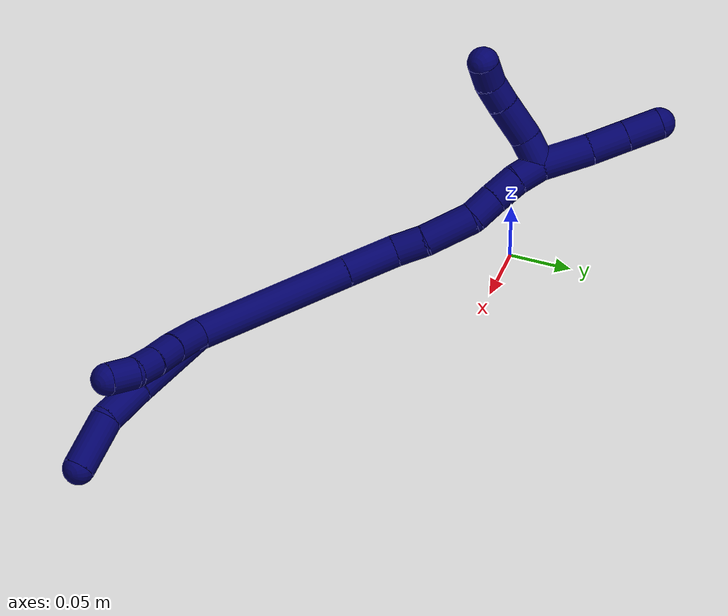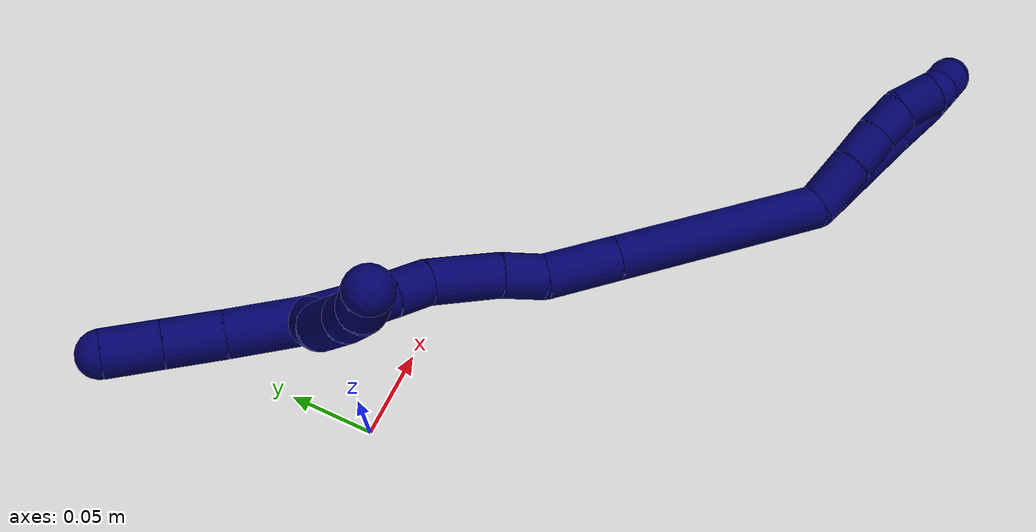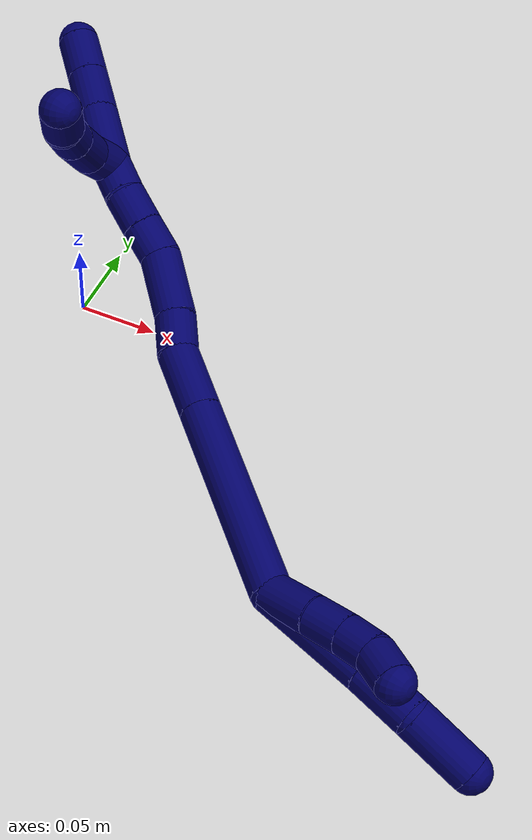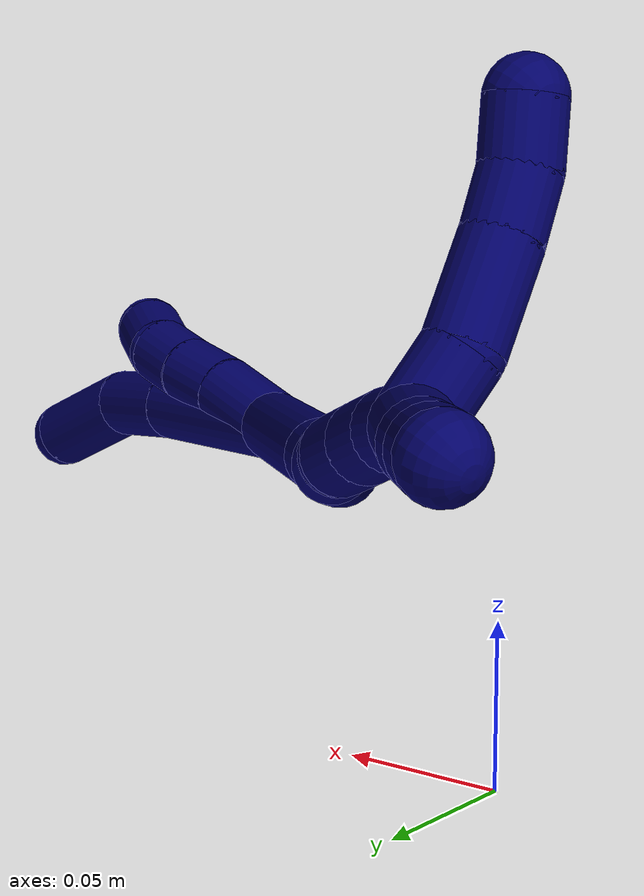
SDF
<sdf version="1.7">
 <world name="default">
  <model name="7">
   <static>0</static>
   <link name="7">
    <collision name="collision-cylinder-e_1_2_8">
     <pose>0.010374 -0.004859 0.033211 0.14527 0.299775 0.021976</pose>
     <geometry><cylinder><radius>0.0125</radius><length>0.070262</length></cylinder></geometry>
     <surface>
      <friction><ode><mu>1.16</mu><mu2>1.16</mu2><slip1>0</slip1><slip2>0</slip2></ode></friction>
      <contact><ode><kp>1e+06</kp><kd>1</kd><max_vel>0</max_vel><min_depth>0.001</min_depth></ode></contact>
     </surface>
    </collision>
    <visual name="visual-cylinder-e_1_2_8">
     <pose>0.010374 -0.004859 0.033211 0.14527 0.299775 0.021976</pose>
     <geometry><cylinder><radius>0.0125</radius><length>0.070262</length></cylinder></geometry>
     <material><ambient>0.003922 0 0.403922 1</ambient></material>
    </visual>
    <collision name="collision-cylinder-e_2_8_9">
     <pose>0.027205 -0.012675 0.083157 0.174887 0.363044 0.032179</pose>
     <geometry><cylinder><radius>0.0125</radius><length>0.03636</length></cylinder></geometry>
     <surface>
      <friction><ode><mu>1.16</mu><mu2>1.16</mu2><slip1>0</slip1><slip2>0</slip2></ode></friction>
      <contact><ode><kp>1e+06</kp><kd>1</kd><max_vel>0</max_vel><min_depth>0.001</min_depth></ode></contact>
     </surface>
    </collision>
    <visual name="visual-cylinder-e_2_8_9">
     <pose>0.027205 -0.012675 0.083157 0.174887 0.363044 0.032179</pose>
     <geometry><cylinder><radius>0.0125</radius><length>0.03636</length></cylinder></geometry>
     <material><ambient>0.003922 0 0.403922 1</ambient></material>
    </visual>
    <collision name="collision-cylinder-e_3_9_6">
     <pose>0.047741 -0.018058 0.116211 0.147617 0.706484 0.054513</pose>
     <geometry><cylinder><radius>0.0125</radius><length>0.043378</length></cylinder></geometry>
     <surface>
      <friction><ode><mu>1.16</mu><mu2>1.16</mu2><slip1>0</slip1><slip2>0</slip2></ode></friction>
      <contact><ode><kp>1e+06</kp><kd>1</kd><max_vel>0</max_vel><min_depth>0.001</min_depth></ode></contact>
     </surface>
    </collision>
    <visual name="visual-cylinder-e_3_9_6">
     <pose>0.047741 -0.018058 0.116211 0.147617 0.706484 0.054513</pose>
     <geometry><cylinder><radius>0.0125</radius><length>0.043378</length></cylinder></geometry>
     <material><ambient>0.003922 0 0.403922 1</ambient></material>
    </visual>
    <collision name="collision-cylinder-e_1_2_10">
     <pose>8.5e-05 -0.000187 0.016163 0.011542 0.005268 3e-05</pose>
     <geometry><cylinder><radius>0.0125</radius><length>0.032328</length></cylinder></geometry>
     <surface>
      <friction><ode><mu>1.16</mu><mu2>1.16</mu2><slip1>0</slip1><slip2>0</slip2></ode></friction>
      <contact><ode><kp>1e+06</kp><kd>1</kd><max_vel>0</max_vel><min_depth>0.001</min_depth></ode></contact>
     </surface>
    </collision>
    <visual name="visual-cylinder-e_1_2_10">
     <pose>8.5e-05 -0.000187 0.016163 0.011542 0.005268 3e-05</pose>
     <geometry><cylinder><radius>0.0125</radius><length>0.032328</length></cylinder></geometry>
     <material><ambient>0.003922 0 0.403922 1</ambient></material>
    </visual>
    <collision name="collision-cylinder-e_2_10_11">
     <pose>0.001218 -0.000449 0.04405 0.00645 0.089087 0.000287</pose>
     <geometry><cylinder><radius>0.0125</radius><length>0.023544</length></cylinder></geometry>
     <surface>
      <friction><ode><mu>1.16</mu><mu2>1.16</mu2><slip1>0</slip1><slip2>0</slip2></ode></friction>
      <contact><ode><kp>1e+06</kp><kd>1</kd><max_vel>0</max_vel><min_depth>0.001</min_depth></ode></contact>
     </surface>
    </collision>
    <visual name="visual-cylinder-e_2_10_11">
     <pose>0.001218 -0.000449 0.04405 0.00645 0.089087 0.000287</pose>
     <geometry><cylinder><radius>0.0125</radius><length>0.023544</length></cylinder></geometry>
     <material><ambient>0.003922 0 0.403922 1</ambient></material>
    </visual>
    <collision name="collision-cylinder-e_3_11_12">
     <pose>0.002757 -0.001367 0.066342 0.079531 0.046381 0.001846</pose>
     <geometry><cylinder><radius>0.0125</radius><length>0.021224</length></cylinder></geometry>
     <surface>
      <friction><ode><mu>1.16</mu><mu2>1.16</mu2><slip1>0</slip1><slip2>0</slip2></ode></friction>
      <contact><ode><kp>1e+06</kp><kd>1</kd><max_vel>0</max_vel><min_depth>0.001</min_depth></ode></contact>
     </surface>
    </collision>
    <visual name="visual-cylinder-e_3_11_12">
     <pose>0.002757 -0.001367 0.066342 0.079531 0.046381 0.001846</pose>
     <geometry><cylinder><radius>0.0125</radius><length>0.021224</length></cylinder></geometry>
     <material><ambient>0.003922 0 0.403922 1</ambient></material>
    </visual>
    <collision name="collision-cylinder-e_4_12_5">
     <pose>0.002635 -0.006627 0.087457 0.396681 -0.053622 -0.01078</pose>
     <geometry><cylinder><radius>0.0125</radius><length>0.022905</length></cylinder></geometry>
     <surface>
      <friction><ode><mu>1.16</mu><mu2>1.16</mu2><slip1>0</slip1><slip2>0</slip2></ode></friction>
      <contact><ode><kp>1e+06</kp><kd>1</kd><max_vel>0</max_vel><min_depth>0.001</min_depth></ode></contact>
     </surface>
    </collision>
    <visual name="visual-cylinder-e_4_12_5">
     <pose>0.002635 -0.006627 0.087457 0.396681 -0.053622 -0.01078</pose>
     <geometry><cylinder><radius>0.0125</radius><length>0.022905</length></cylinder></geometry>
     <material><ambient>0.003922 0 0.403922 1</ambient></material>
    </visual>
    <collision name="collision-cylinder-e_1_2_13">
     <pose>-0.011932 0.034992 -0.050223 -2.53306 -0.192524 0.596642</pose>
     <geometry><cylinder><radius>0.0125</radius><length>0.124727</length></cylinder></geometry>
     <surface>
      <friction><ode><mu>1.16</mu><mu2>1.16</mu2><slip1>0</slip1><slip2>0</slip2></ode></friction>
      <contact><ode><kp>1e+06</kp><kd>1</kd><max_vel>0</max_vel><min_depth>0.001</min_depth></ode></contact>
     </surface>
    </collision>
    <visual name="visual-cylinder-e_1_2_13">
     <pose>-0.011932 0.034992 -0.050223 -2.53306 -0.192524 0.596642</pose>
     <geometry><cylinder><radius>0.0125</radius><length>0.124727</length></cylinder></geometry>
     <material><ambient>0.003922 0 0.403922 1</ambient></material>
    </visual>
    <collision name="collision-cylinder-e_2_13_14">
     <pose>-0.027773 0.081831 -0.117421 -2.53233 -0.186613 0.578546</pose>
     <geometry><cylinder><radius>0.0125</radius><length>0.042131</length></cylinder></geometry>
     <surface>
      <friction><ode><mu>1.16</mu><mu2>1.16</mu2><slip1>0</slip1><slip2>0</slip2></ode></friction>
      <contact><ode><kp>1e+06</kp><kd>1</kd><max_vel>0</max_vel><min_depth>0.001</min_depth></ode></contact>
     </surface>
    </collision>
    <visual name="visual-cylinder-e_2_13_14">
     <pose>-0.027773 0.081831 -0.117421 -2.53233 -0.186613 0.578546</pose>
     <geometry><cylinder><radius>0.0125</radius><length>0.042131</length></cylinder></geometry>
     <material><ambient>0.003922 0 0.403922 1</ambient></material>
    </visual>
    <collision name="collision-cylinder-e_3_14_15">
     <pose>-0.034369 0.10303 -0.141879 -2.24552 -0.220696 0.45313</pose>
     <geometry><cylinder><radius>0.0125</radius><length>0.024553</length></cylinder></geometry>
     <surface>
      <friction><ode><mu>1.16</mu><mu2>1.16</mu2><slip1>0</slip1><slip2>0</slip2></ode></friction>
      <contact><ode><kp>1e+06</kp><kd>1</kd><max_vel>0</max_vel><min_depth>0.001</min_depth></ode></contact>
     </surface>
    </collision>
    <visual name="visual-cylinder-e_3_14_15">
     <pose>-0.034369 0.10303 -0.141879 -2.24552 -0.220696 0.45313</pose>
     <geometry><cylinder><radius>0.0125</radius><length>0.024553</length></cylinder></geometry>
     <material><ambient>0.003922 0 0.403922 1</ambient></material>
    </visual>
    <collision name="collision-cylinder-e_4_15_16">
     <pose>-0.043015 0.125782 -0.163575 -2.38574 -0.296127 0.718758</pose>
     <geometry><cylinder><radius>0.0125</radius><length>0.040841</length></cylinder></geometry>
     <surface>
      <friction><ode><mu>1.16</mu><mu2>1.16</mu2><slip1>0</slip1><slip2>0</slip2></ode></friction>
      <contact><ode><kp>1e+06</kp><kd>1</kd><max_vel>0</max_vel><min_depth>0.001</min_depth></ode></contact>
     </surface>
    </collision>
    <visual name="visual-cylinder-e_4_15_16">
     <pose>-0.043015 0.125782 -0.163575 -2.38574 -0.296127 0.718758</pose>
     <geometry><cylinder><radius>0.0125</radius><length>0.040841</length></cylinder></geometry>
     <material><ambient>0.003922 0 0.403922 1</ambient></material>
    </visual>
    <collision name="collision-cylinder-e_5_16_17">
     <pose>-0.054326 0.143822 -0.186346 -2.64447 -0.50251 1.58203</pose>
     <geometry><cylinder><radius>0.0125</radius><length>0.022221</length></cylinder></geometry>
     <surface>
      <friction><ode><mu>1.16</mu><mu2>1.16</mu2><slip1>0</slip1><slip2>0</slip2></ode></friction>
      <contact><ode><kp>1e+06</kp><kd>1</kd><max_vel>0</max_vel><min_depth>0.001</min_depth></ode></contact>
     </surface>
    </collision>
    <visual name="visual-cylinder-e_5_16_17">
     <pose>-0.054326 0.143822 -0.186346 -2.64447 -0.50251 1.58203</pose>
     <geometry><cylinder><radius>0.0125</radius><length>0.022221</length></cylinder></geometry>
     <material><ambient>0.003922 0 0.403922 1</ambient></material>
    </visual>
    <collision name="collision-cylinder-e_6_17_18">
     <pose>-0.065048 0.153601 -0.20393 -2.62426 -0.477365 1.48707</pose>
     <geometry><cylinder><radius>0.0125</radius><length>0.023381</length></cylinder></geometry>
     <surface>
      <friction><ode><mu>1.16</mu><mu2>1.16</mu2><slip1>0</slip1><slip2>0</slip2></ode></friction>
      <contact><ode><kp>1e+06</kp><kd>1</kd><max_vel>0</max_vel><min_depth>0.001</min_depth></ode></contact>
     </surface>
    </collision>
    <visual name="visual-cylinder-e_6_17_18">
     <pose>-0.065048 0.153601 -0.20393 -2.62426 -0.477365 1.48707</pose>
     <geometry><cylinder><radius>0.0125</radius><length>0.023381</length></cylinder></geometry>
     <material><ambient>0.003922 0 0.403922 1</ambient></material>
    </visual>
    <collision name="collision-cylinder-e_7_18_1">
     <pose>-0.074043 0.164485 -0.221697 -2.55993 -0.333411 1.02427</pose>
     <geometry><cylinder><radius>0.0125</radius><length>0.022146</length></cylinder></geometry>
     <surface>
      <friction><ode><mu>1.16</mu><mu2>1.16</mu2><slip1>0</slip1><slip2>0</slip2></ode></friction>
      <contact><ode><kp>1e+06</kp><kd>1</kd><max_vel>0</max_vel><min_depth>0.001</min_depth></ode></contact>
     </surface>
    </collision>
    <visual name="visual-cylinder-e_7_18_1">
     <pose>-0.074043 0.164485 -0.221697 -2.55993 -0.333411 1.02427</pose>
     <geometry><cylinder><radius>0.0125</radius><length>0.022146</length></cylinder></geometry>
     <material><ambient>0.003922 0 0.403922 1</ambient></material>
    </visual>
    <collision name="collision-cylinder-e_1_1_19">
     <pose>-0.08019 0.183201 -0.24607 -2.44907 -0.123622 0.339765</pose>
     <geometry><cylinder><radius>0.0125</radius><length>0.040931</length></cylinder></geometry>
     <surface>
      <friction><ode><mu>1.16</mu><mu2>1.16</mu2><slip1>0</slip1><slip2>0</slip2></ode></friction>
      <contact><ode><kp>1e+06</kp><kd>1</kd><max_vel>0</max_vel><min_depth>0.001</min_depth></ode></contact>
     </surface>
    </collision>
    <visual name="visual-cylinder-e_1_1_19">
     <pose>-0.08019 0.183201 -0.24607 -2.44907 -0.123622 0.339765</pose>
     <geometry><cylinder><radius>0.0125</radius><length>0.040931</length></cylinder></geometry>
     <material><ambient>0.003922 0 0.403922 1</ambient></material>
    </visual>
    <collision name="collision-cylinder-e_2_19_20">
     <pose>-0.085463 0.205818 -0.273008 -2.43508 -0.18289 0.487504</pose>
     <geometry><cylinder><radius>0.0125</radius><length>0.030234</length></cylinder></geometry>
     <surface>
      <friction><ode><mu>1.16</mu><mu2>1.16</mu2><slip1>0</slip1><slip2>0</slip2></ode></friction>
      <contact><ode><kp>1e+06</kp><kd>1</kd><max_vel>0</max_vel><min_depth>0.001</min_depth></ode></contact>
     </surface>
    </collision>
    <visual name="visual-cylinder-e_2_19_20">
     <pose>-0.085463 0.205818 -0.273008 -2.43508 -0.18289 0.487504</pose>
     <geometry><cylinder><radius>0.0125</radius><length>0.030234</length></cylinder></geometry>
     <material><ambient>0.003922 0 0.403922 1</ambient></material>
    </visual>
    <collision name="collision-cylinder-e_3_20_4">
     <pose>-0.090817 0.224641 -0.295128 -2.43815 -0.18163 0.486466</pose>
     <geometry><cylinder><radius>0.0125</radius><length>0.028835</length></cylinder></geometry>
     <surface>
      <friction><ode><mu>1.16</mu><mu2>1.16</mu2><slip1>0</slip1><slip2>0</slip2></ode></friction>
      <contact><ode><kp>1e+06</kp><kd>1</kd><max_vel>0</max_vel><min_depth>0.001</min_depth></ode></contact>
     </surface>
    </collision>
    <visual name="visual-cylinder-e_3_20_4">
     <pose>-0.090817 0.224641 -0.295128 -2.43815 -0.18163 0.486466</pose>
     <geometry><cylinder><radius>0.0125</radius><length>0.028835</length></cylinder></geometry>
     <material><ambient>0.003922 0 0.403922 1</ambient></material>
    </visual>
    <collision name="collision-cylinder-e_1_1_21">
     <pose>-0.089208 0.165864 -0.229069 1.26695 -1.19301 -0.925223</pose>
     <geometry><cylinder><radius>0.0125</radius><length>0.024834</length></cylinder></geometry>
     <surface>
      <friction><ode><mu>1.16</mu><mu2>1.16</mu2><slip1>0</slip1><slip2>0</slip2></ode></friction>
      <contact><ode><kp>1e+06</kp><kd>1</kd><max_vel>0</max_vel><min_depth>0.001</min_depth></ode></contact>
     </surface>
    </collision>
    <visual name="visual-cylinder-e_1_1_21">
     <pose>-0.089208 0.165864 -0.229069 1.26695 -1.19301 -0.925223</pose>
     <geometry><cylinder><radius>0.0125</radius><length>0.024834</length></cylinder></geometry>
     <material><ambient>0.003922 0 0.403922 1</ambient></material>
    </visual>
    <collision name="collision-cylinder-e_2_21_22">
     <pose>-0.115794 0.156944 -0.221347 0.621524 -1.09184 -0.385381</pose>
     <geometry><cylinder><radius>0.0125</radius><length>0.033905</length></cylinder></geometry>
     <surface>
      <friction><ode><mu>1.16</mu><mu2>1.16</mu2><slip1>0</slip1><slip2>0</slip2></ode></friction>
      <contact><ode><kp>1e+06</kp><kd>1</kd><max_vel>0</max_vel><min_depth>0.001</min_depth></ode></contact>
     </surface>
    </collision>
    <visual name="visual-cylinder-e_2_21_22">
     <pose>-0.115794 0.156944 -0.221347 0.621524 -1.09184 -0.385381</pose>
     <geometry><cylinder><radius>0.0125</radius><length>0.033905</length></cylinder></geometry>
     <material><ambient>0.003922 0 0.403922 1</ambient></material>
    </visual>
    <collision name="collision-cylinder-e_3_22_23">
     <pose>-0.140093 0.150392 -0.210968 0.461494 -1.11835 -0.291948</pose>
     <geometry><cylinder><radius>0.0125</radius><length>0.020579</length></cylinder></geometry>
     <surface>
      <friction><ode><mu>1.16</mu><mu2>1.16</mu2><slip1>0</slip1><slip2>0</slip2></ode></friction>
      <contact><ode><kp>1e+06</kp><kd>1</kd><max_vel>0</max_vel><min_depth>0.001</min_depth></ode></contact>
     </surface>
    </collision>
    <visual name="visual-cylinder-e_3_22_23">
     <pose>-0.140093 0.150392 -0.210968 0.461494 -1.11835 -0.291948</pose>
     <geometry><cylinder><radius>0.0125</radius><length>0.020579</length></cylinder></geometry>
     <material><ambient>0.003922 0 0.403922 1</ambient></material>
    </visual>
    <collision name="collision-cylinder-e_4_23_3">
     <pose>-0.158798 0.149182 -0.202818 -0.190099 -1.15279 0.123785</pose>
     <geometry><cylinder><radius>0.0125</radius><length>0.020682</length></cylinder></geometry>
     <surface>
      <friction><ode><mu>1.16</mu><mu2>1.16</mu2><slip1>0</slip1><slip2>0</slip2></ode></friction>
      <contact><ode><kp>1e+06</kp><kd>1</kd><max_vel>0</max_vel><min_depth>0.001</min_depth></ode></contact>
     </surface>
    </collision>
    <visual name="visual-cylinder-e_4_23_3">
     <pose>-0.158798 0.149182 -0.202818 -0.190099 -1.15279 0.123785</pose>
     <geometry><cylinder><radius>0.0125</radius><length>0.020682</length></cylinder></geometry>
     <material><ambient>0.003922 0 0.403922 1</ambient></material>
    </visual>
    <collision name="collision-sphere-3">
     <pose>-0.168249 0.149976 -0.198695 0 -0 0</pose>
     <geometry><sphere><radius>0.0125</radius></sphere></geometry>
     <surface>
      <friction><ode><mu>1.16</mu><mu2>1.16</mu2><slip1>0</slip1><slip2>0</slip2></ode></friction>
      <contact><ode><kp>1e+06</kp><kd>1</kd><max_vel>0</max_vel><min_depth>0.001</min_depth></ode></contact>
     </surface>
    </collision>
    <visual name="visual-sphere-3">
     <pose>-0.168249 0.149976 -0.198695 0 -0 0</pose>
     <geometry><sphere><radius>0.0125</radius></sphere></geometry>
     <material><ambient>0.003922 0 0.403922 1</ambient></material>
    </visual>
    <collision name="collision-sphere-23">
     <pose>-0.149347 0.148389 -0.20694 0 -0 0</pose>
     <geometry><sphere><radius>0.0125</radius></sphere></geometry>
     <surface>
      <friction><ode><mu>1.16</mu><mu2>1.16</mu2><slip1>0</slip1><slip2>0</slip2></ode></friction>
      <contact><ode><kp>1e+06</kp><kd>1</kd><max_vel>0</max_vel><min_depth>0.001</min_depth></ode></contact>
     </surface>
    </collision>
    <visual name="visual-sphere-23">
     <pose>-0.149347 0.148389 -0.20694 0 -0 0</pose>
     <geometry><sphere><radius>0.0125</radius></sphere></geometry>
     <material><ambient>0.003922 0 0.403922 1</ambient></material>
    </visual>
    <collision name="collision-sphere-22">
     <pose>-0.130839 0.152395 -0.214995 0 -0 0</pose>
     <geometry><sphere><radius>0.0125</radius></sphere></geometry>
     <surface>
      <friction><ode><mu>1.16</mu><mu2>1.16</mu2><slip1>0</slip1><slip2>0</slip2></ode></friction>
      <contact><ode><kp>1e+06</kp><kd>1</kd><max_vel>0</max_vel><min_depth>0.001</min_depth></ode></contact>
     </surface>
    </collision>
    <visual name="visual-sphere-22">
     <pose>-0.130839 0.152395 -0.214995 0 -0 0</pose>
     <geometry><sphere><radius>0.0125</radius></sphere></geometry>
     <material><ambient>0.003922 0 0.403922 1</ambient></material>
    </visual>
    <collision name="collision-sphere-21">
     <pose>-0.100749 0.161493 -0.227699 0 -0 0</pose>
     <geometry><sphere><radius>0.0125</radius></sphere></geometry>
     <surface>
      <friction><ode><mu>1.16</mu><mu2>1.16</mu2><slip1>0</slip1><slip2>0</slip2></ode></friction>
      <contact><ode><kp>1e+06</kp><kd>1</kd><max_vel>0</max_vel><min_depth>0.001</min_depth></ode></contact>
     </surface>
    </collision>
    <visual name="visual-sphere-21">
     <pose>-0.100749 0.161493 -0.227699 0 -0 0</pose>
     <geometry><sphere><radius>0.0125</radius></sphere></geometry>
     <material><ambient>0.003922 0 0.403922 1</ambient></material>
    </visual>
    <collision name="collision-sphere-4">
     <pose>-0.093421 0.233813 -0.305942 0 -0 0</pose>
     <geometry><sphere><radius>0.0125</radius></sphere></geometry>
     <surface>
      <friction><ode><mu>1.16</mu><mu2>1.16</mu2><slip1>0</slip1><slip2>0</slip2></ode></friction>
      <contact><ode><kp>1e+06</kp><kd>1</kd><max_vel>0</max_vel><min_depth>0.001</min_depth></ode></contact>
     </surface>
    </collision>
    <visual name="visual-sphere-4">
     <pose>-0.093421 0.233813 -0.305942 0 -0 0</pose>
     <geometry><sphere><radius>0.0125</radius></sphere></geometry>
     <material><ambient>0.003922 0 0.403922 1</ambient></material>
    </visual>
    <collision name="collision-sphere-20">
     <pose>-0.088213 0.215469 -0.284314 0 -0 0</pose>
     <geometry><sphere><radius>0.0125</radius></sphere></geometry>
     <surface>
      <friction><ode><mu>1.16</mu><mu2>1.16</mu2><slip1>0</slip1><slip2>0</slip2></ode></friction>
      <contact><ode><kp>1e+06</kp><kd>1</kd><max_vel>0</max_vel><min_depth>0.001</min_depth></ode></contact>
     </surface>
    </collision>
    <visual name="visual-sphere-20">
     <pose>-0.088213 0.215469 -0.284314 0 -0 0</pose>
     <geometry><sphere><radius>0.0125</radius></sphere></geometry>
     <material><ambient>0.003922 0 0.403922 1</ambient></material>
    </visual>
    <collision name="collision-sphere-11">
     <pose>0.002265 -0.000524 0.055775 0 -0 0</pose>
     <geometry><sphere><radius>0.0125</radius></sphere></geometry>
     <surface>
      <friction><ode><mu>1.16</mu><mu2>1.16</mu2><slip1>0</slip1><slip2>0</slip2></ode></friction>
      <contact><ode><kp>1e+06</kp><kd>1</kd><max_vel>0</max_vel><min_depth>0.001</min_depth></ode></contact>
     </surface>
    </collision>
    <visual name="visual-sphere-11">
     <pose>0.002265 -0.000524 0.055775 0 -0 0</pose>
     <geometry><sphere><radius>0.0125</radius></sphere></geometry>
     <material><ambient>0.003922 0 0.403922 1</ambient></material>
    </visual>
    <collision name="collision-sphere-10">
     <pose>0.00017 -0.000373 0.032325 0 -0 0</pose>
     <geometry><sphere><radius>0.0125</radius></sphere></geometry>
     <surface>
      <friction><ode><mu>1.16</mu><mu2>1.16</mu2><slip1>0</slip1><slip2>0</slip2></ode></friction>
      <contact><ode><kp>1e+06</kp><kd>1</kd><max_vel>0</max_vel><min_depth>0.001</min_depth></ode></contact>
     </surface>
    </collision>
    <visual name="visual-sphere-10">
     <pose>0.00017 -0.000373 0.032325 0 -0 0</pose>
     <geometry><sphere><radius>0.0125</radius></sphere></geometry>
     <material><ambient>0.003922 0 0.403922 1</ambient></material>
    </visual>
    <collision name="collision-sphere-6">
     <pose>0.06182 -0.020485 0.13253 0 -0 0</pose>
     <geometry><sphere><radius>0.0125</radius></sphere></geometry>
     <surface>
      <friction><ode><mu>1.16</mu><mu2>1.16</mu2><slip1>0</slip1><slip2>0</slip2></ode></friction>
      <contact><ode><kp>1e+06</kp><kd>1</kd><max_vel>0</max_vel><min_depth>0.001</min_depth></ode></contact>
     </surface>
    </collision>
    <visual name="visual-sphere-6">
     <pose>0.06182 -0.020485 0.13253 0 -0 0</pose>
     <geometry><sphere><radius>0.0125</radius></sphere></geometry>
     <material><ambient>0.003922 0 0.403922 1</ambient></material>
    </visual>
    <collision name="collision-sphere-9">
     <pose>0.033661 -0.015632 0.099893 0 -0 0</pose>
     <geometry><sphere><radius>0.0125</radius></sphere></geometry>
     <surface>
      <friction><ode><mu>1.16</mu><mu2>1.16</mu2><slip1>0</slip1><slip2>0</slip2></ode></friction>
      <contact><ode><kp>1e+06</kp><kd>1</kd><max_vel>0</max_vel><min_depth>0.001</min_depth></ode></contact>
     </surface>
    </collision>
    <visual name="visual-sphere-9">
     <pose>0.033661 -0.015632 0.099893 0 -0 0</pose>
     <geometry><sphere><radius>0.0125</radius></sphere></geometry>
     <material><ambient>0.003922 0 0.403922 1</ambient></material>
    </visual>
    <collision name="collision-sphere-2">
     <geometry><sphere><radius>0.0125</radius></sphere></geometry>
     <surface>
      <friction><ode><mu>1.16</mu><mu2>1.16</mu2><slip1>0</slip1><slip2>0</slip2></ode></friction>
      <contact><ode><kp>1e+06</kp><kd>1</kd><max_vel>0</max_vel><min_depth>0.001</min_depth></ode></contact>
     </surface>
    </collision>
    <visual name="visual-sphere-2">
     <geometry><sphere><radius>0.0125</radius></sphere></geometry>
     <material><ambient>0.003922 0 0.403922 1</ambient></material>
    </visual>
    <collision name="collision-sphere-19">
     <pose>-0.082714 0.196168 -0.261701 0 -0 0</pose>
     <geometry><sphere><radius>0.0125</radius></sphere></geometry>
     <surface>
      <friction><ode><mu>1.16</mu><mu2>1.16</mu2><slip1>0</slip1><slip2>0</slip2></ode></friction>
      <contact><ode><kp>1e+06</kp><kd>1</kd><max_vel>0</max_vel><min_depth>0.001</min_depth></ode></contact>
     </surface>
    </collision>
    <visual name="visual-sphere-19">
     <pose>-0.082714 0.196168 -0.261701 0 -0 0</pose>
     <geometry><sphere><radius>0.0125</radius></sphere></geometry>
     <material><ambient>0.003922 0 0.403922 1</ambient></material>
    </visual>
    <collision name="collision-sphere-8">
     <pose>0.020749 -0.009717 0.066421 0 -0 0</pose>
     <geometry><sphere><radius>0.0125</radius></sphere></geometry>
     <surface>
      <friction><ode><mu>1.16</mu><mu2>1.16</mu2><slip1>0</slip1><slip2>0</slip2></ode></friction>
      <contact><ode><kp>1e+06</kp><kd>1</kd><max_vel>0</max_vel><min_depth>0.001</min_depth></ode></contact>
     </surface>
    </collision>
    <visual name="visual-sphere-8">
     <pose>0.020749 -0.009717 0.066421 0 -0 0</pose>
     <geometry><sphere><radius>0.0125</radius></sphere></geometry>
     <material><ambient>0.003922 0 0.403922 1</ambient></material>
    </visual>
    <collision name="collision-sphere-12">
     <pose>0.003249 -0.002209 0.076909 0 -0 0</pose>
     <geometry><sphere><radius>0.0125</radius></sphere></geometry>
     <surface>
      <friction><ode><mu>1.16</mu><mu2>1.16</mu2><slip1>0</slip1><slip2>0</slip2></ode></friction>
      <contact><ode><kp>1e+06</kp><kd>1</kd><max_vel>0</max_vel><min_depth>0.001</min_depth></ode></contact>
     </surface>
    </collision>
    <visual name="visual-sphere-12">
     <pose>0.003249 -0.002209 0.076909 0 -0 0</pose>
     <geometry><sphere><radius>0.0125</radius></sphere></geometry>
     <material><ambient>0.003922 0 0.403922 1</ambient></material>
    </visual>
    <collision name="collision-sphere-5">
     <pose>0.002021 -0.011045 0.098005 0 -0 0</pose>
     <geometry><sphere><radius>0.0125</radius></sphere></geometry>
     <surface>
      <friction><ode><mu>1.16</mu><mu2>1.16</mu2><slip1>0</slip1><slip2>0</slip2></ode></friction>
      <contact><ode><kp>1e+06</kp><kd>1</kd><max_vel>0</max_vel><min_depth>0.001</min_depth></ode></contact>
     </surface>
    </collision>
    <visual name="visual-sphere-5">
     <pose>0.002021 -0.011045 0.098005 0 -0 0</pose>
     <geometry><sphere><radius>0.0125</radius></sphere></geometry>
     <material><ambient>0.003922 0 0.403922 1</ambient></material>
    </visual>
    <collision name="collision-sphere-13">
     <pose>-0.023865 0.069985 -0.100446 0 -0 0</pose>
     <geometry><sphere><radius>0.0125</radius></sphere></geometry>
     <surface>
      <friction><ode><mu>1.16</mu><mu2>1.16</mu2><slip1>0</slip1><slip2>0</slip2></ode></friction>
      <contact><ode><kp>1e+06</kp><kd>1</kd><max_vel>0</max_vel><min_depth>0.001</min_depth></ode></contact>
     </surface>
    </collision>
    <visual name="visual-sphere-13">
     <pose>-0.023865 0.069985 -0.100446 0 -0 0</pose>
     <geometry><sphere><radius>0.0125</radius></sphere></geometry>
     <material><ambient>0.003922 0 0.403922 1</ambient></material>
    </visual>
    <collision name="collision-sphere-14">
     <pose>-0.031681 0.093677 -0.134396 0 -0 0</pose>
     <geometry><sphere><radius>0.0125</radius></sphere></geometry>
     <surface>
      <friction><ode><mu>1.16</mu><mu2>1.16</mu2><slip1>0</slip1><slip2>0</slip2></ode></friction>
      <contact><ode><kp>1e+06</kp><kd>1</kd><max_vel>0</max_vel><min_depth>0.001</min_depth></ode></contact>
     </surface>
    </collision>
    <visual name="visual-sphere-14">
     <pose>-0.031681 0.093677 -0.134396 0 -0 0</pose>
     <geometry><sphere><radius>0.0125</radius></sphere></geometry>
     <material><ambient>0.003922 0 0.403922 1</ambient></material>
    </visual>
    <collision name="collision-sphere-15">
     <pose>-0.037056 0.112384 -0.149362 0 -0 0</pose>
     <geometry><sphere><radius>0.0125</radius></sphere></geometry>
     <surface>
      <friction><ode><mu>1.16</mu><mu2>1.16</mu2><slip1>0</slip1><slip2>0</slip2></ode></friction>
      <contact><ode><kp>1e+06</kp><kd>1</kd><max_vel>0</max_vel><min_depth>0.001</min_depth></ode></contact>
     </surface>
    </collision>
    <visual name="visual-sphere-15">
     <pose>-0.037056 0.112384 -0.149362 0 -0 0</pose>
     <geometry><sphere><radius>0.0125</radius></sphere></geometry>
     <material><ambient>0.003922 0 0.403922 1</ambient></material>
    </visual>
    <collision name="collision-sphere-16">
     <pose>-0.048975 0.139179 -0.177788 0 -0 0</pose>
     <geometry><sphere><radius>0.0125</radius></sphere></geometry>
     <surface>
      <friction><ode><mu>1.16</mu><mu2>1.16</mu2><slip1>0</slip1><slip2>0</slip2></ode></friction>
      <contact><ode><kp>1e+06</kp><kd>1</kd><max_vel>0</max_vel><min_depth>0.001</min_depth></ode></contact>
     </surface>
    </collision>
    <visual name="visual-sphere-16">
     <pose>-0.048975 0.139179 -0.177788 0 -0 0</pose>
     <geometry><sphere><radius>0.0125</radius></sphere></geometry>
     <material><ambient>0.003922 0 0.403922 1</ambient></material>
    </visual>
    <collision name="collision-sphere-17">
     <pose>-0.059677 0.148466 -0.194905 0 -0 0</pose>
     <geometry><sphere><radius>0.0125</radius></sphere></geometry>
     <surface>
      <friction><ode><mu>1.16</mu><mu2>1.16</mu2><slip1>0</slip1><slip2>0</slip2></ode></friction>
      <contact><ode><kp>1e+06</kp><kd>1</kd><max_vel>0</max_vel><min_depth>0.001</min_depth></ode></contact>
     </surface>
    </collision>
    <visual name="visual-sphere-17">
     <pose>-0.059677 0.148466 -0.194905 0 -0 0</pose>
     <geometry><sphere><radius>0.0125</radius></sphere></geometry>
     <material><ambient>0.003922 0 0.403922 1</ambient></material>
    </visual>
    <collision name="collision-sphere-18">
     <pose>-0.070419 0.158737 -0.212955 0 -0 0</pose>
     <geometry><sphere><radius>0.0125</radius></sphere></geometry>
     <surface>
      <friction><ode><mu>1.16</mu><mu2>1.16</mu2><slip1>0</slip1><slip2>0</slip2></ode></friction>
      <contact><ode><kp>1e+06</kp><kd>1</kd><max_vel>0</max_vel><min_depth>0.001</min_depth></ode></contact>
     </surface>
    </collision>
    <visual name="visual-sphere-18">
     <pose>-0.070419 0.158737 -0.212955 0 -0 0</pose>
     <geometry><sphere><radius>0.0125</radius></sphere></geometry>
     <material><ambient>0.003922 0 0.403922 1</ambient></material>
    </visual>
    <collision name="collision-sphere-1">
     <pose>-0.077667 0.170234 -0.230439 0 -0 0</pose>
     <geometry><sphere><radius>0.0125</radius></sphere></geometry>
     <surface>
      <friction><ode><mu>1.16</mu><mu2>1.16</mu2><slip1>0</slip1><slip2>0</slip2></ode></friction>
      <contact><ode><kp>1e+06</kp><kd>1</kd><max_vel>0</max_vel><min_depth>0.001</min_depth></ode></contact>
     </surface>
    </collision>
    <visual name="visual-sphere-1">
     <pose>-0.077667 0.170234 -0.230439 0 -0 0</pose>
     <geometry><sphere><radius>0.0125</radius></sphere></geometry>
     <material><ambient>0.003922 0 0.403922 1</ambient></material>
    </visual>
    <inertial>
     <pose>-0.035308 0.079927 -0.091188 0 -0 0</pose>
     <mass>0.75</mass>
     <inertia><ixx>0.00032</ixx><ixy>0</ixy><ixz>0</ixz><iyy>6.9e-05</iyy><iyz>0</iyz><izz>-7.7e-05</izz></inertia>
    </inertial>
   </link>
   <pose>0.216531 -0.178821 0.043052 0.883198 1.17102 0.633809</pose>
  </model>
 </world>
</sdf>
